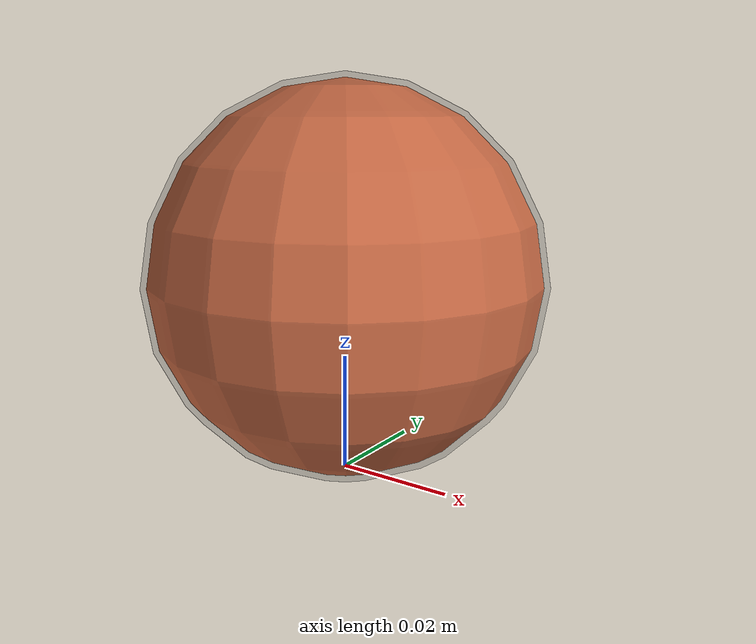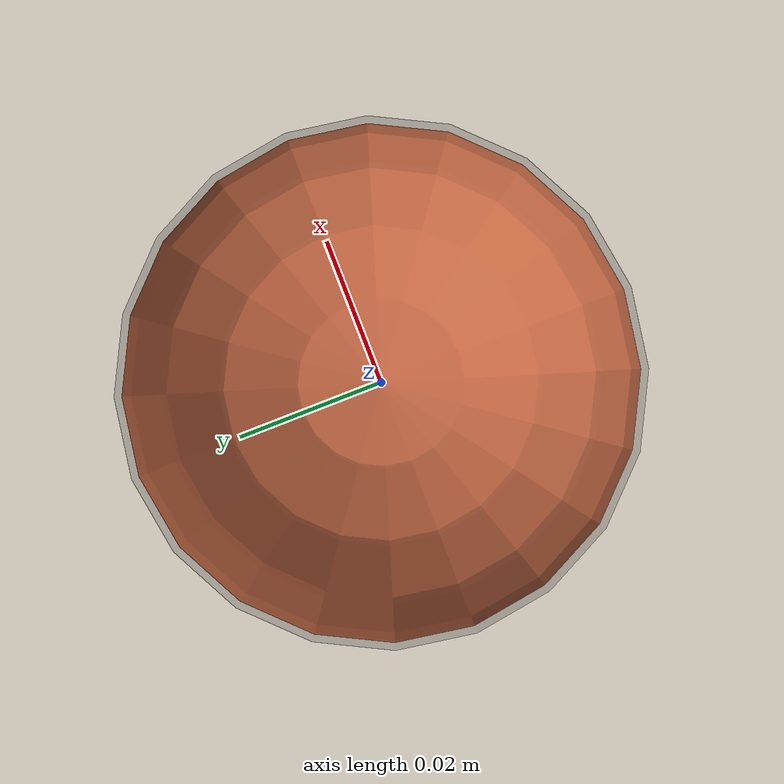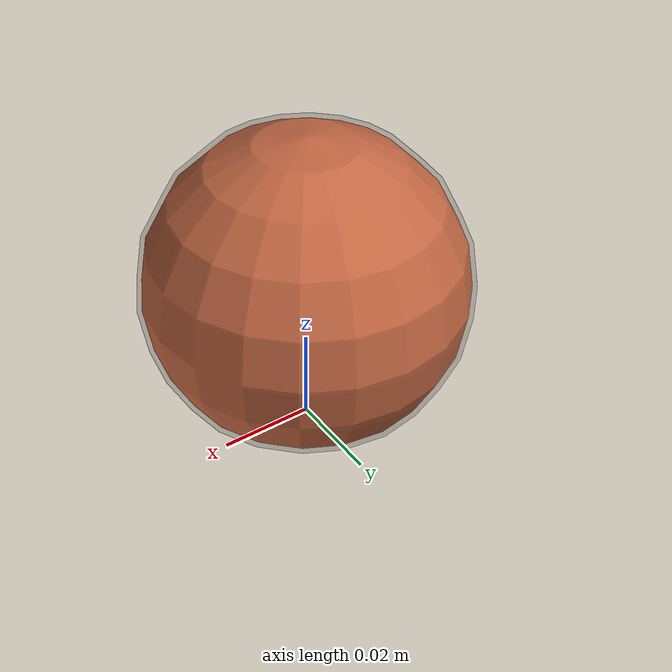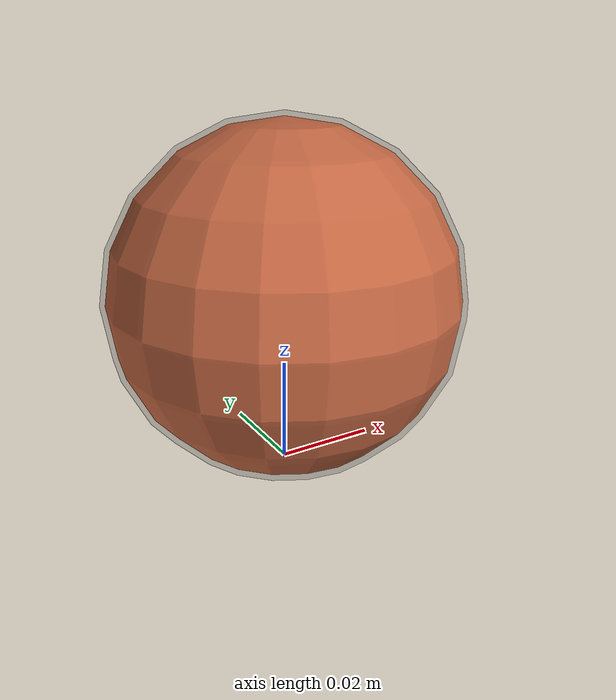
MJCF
<mujoco model="ycb_peach">
  <compiler autolimits="true"/>
  <default>
    <geom friction="0.9 0.01 0.001" condim="3" solref="0.008 1" solimp="0.90 0.95 0.001" margin="0.001"/>
  </default>
  <worldbody>
    <body name="ycb_peach" pos="0 0 0.034">
      <freejoint/>
      <inertial pos="0 0 0" mass="0.09" diaginertia="0.000042 0.000042 0.000042"/>
      <geom name="ycb_peach_collision" type="sphere" size="0.034" rgba="0.25 0.25 0.25 0.25"/>
      <geom name="ycb_peach_visual" type="sphere" size="0.033" contype="0" conaffinity="0" group="1" rgba="0.95 0.47 0.28 1"/>
    </body>
  </worldbody>
</mujoco>
